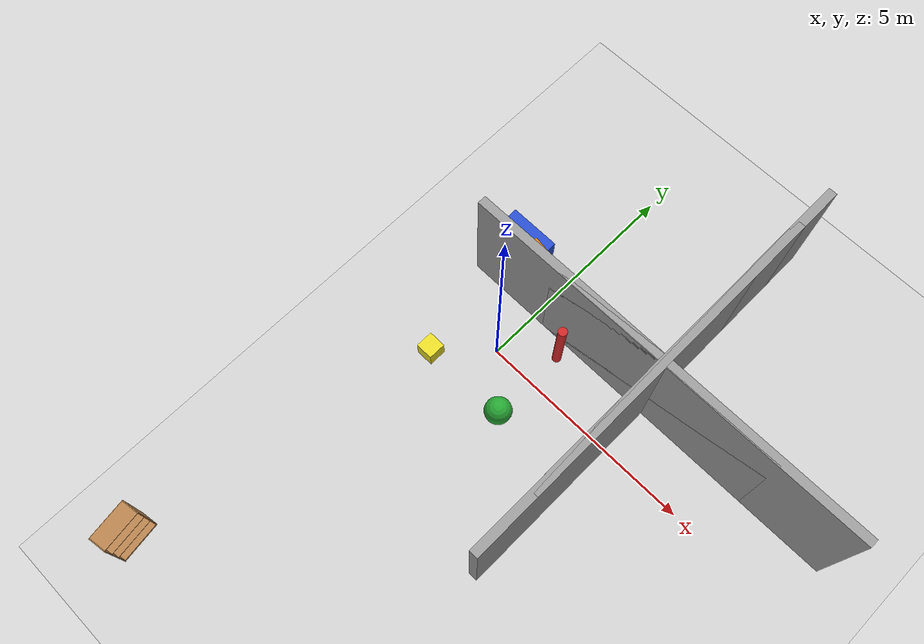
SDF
<sdf version="1.7">
 <world name="default">
  <gravity>0 0 -9.81</gravity>
  <model name="ground_plane">
   <static>1</static>
   <link name="link">
    <collision name="collision">
     <geometry><plane><normal>0 0 1</normal><size>100 100</size></plane></geometry>
     <surface><friction><ode><mu>100</mu><mu2>50</mu2></ode></friction></surface>
    </collision>
    <visual name="visual">
     <cast_shadows>0</cast_shadows>
     <geometry><plane><normal>0 0 1</normal><size>100 100</size></plane></geometry>
     <material>
      <script><uri>file://media/materials/scripts/gazebo.material</uri><name>Gazebo/Grey</name></script>
     </material>
    </visual>
   </link>
  </model>
  <spherical_coordinates>
   <surface_model>EARTH_WGS84</surface_model>
   <latitude_deg>35.6528</latitude_deg>
   <longitude_deg>139.839</longitude_deg>
   <elevation>0</elevation>
   <heading_deg>0</heading_deg>
  </spherical_coordinates>
  <light name="user_point_light_2" type="point">
   <pose>-1.4 1.4 4 0 -0 0</pose>
   <diffuse>1 1 1 1</diffuse>
   <specular>0.1 0.1 0.1 1</specular>
   <attenuation>
    <range>20</range>
    <constant>0.5</constant>
    <linear>0.01</linear>
    <quadratic>0.001</quadratic>
   </attenuation>
   <cast_shadows>0</cast_shadows>
   <direction>0 0 -1</direction>
   <spot><inner_angle>0</inner_angle><outer_angle>0</outer_angle><falloff>0</falloff></spot>
  </light>
  <light name="user_point_light_3" type="point">
   <pose>-1.4 -1.4 4 0 -0 0</pose>
   <diffuse>1 1 1 1</diffuse>
   <specular>0.1 0.1 0.1 1</specular>
   <attenuation>
    <range>20</range>
    <constant>0.5</constant>
    <linear>0.01</linear>
    <quadratic>0.001</quadratic>
   </attenuation>
   <cast_shadows>0</cast_shadows>
   <direction>0 0 -1</direction>
   <spot><inner_angle>0</inner_angle><outer_angle>0</outer_angle><falloff>0</falloff></spot>
  </light>
  <magnetic_field>6e-06 2.3e-05 -4.2e-05</magnetic_field>
  <atmosphere type="adiabatic"/>
  <physics type="ode">
   <max_step_size>0.001</max_step_size>
   <real_time_factor>1</real_time_factor>
   <real_time_update_rate>1000</real_time_update_rate>
  </physics>
  <scene><ambient>0.4 0.4 0.4 1</ambient><background>0.7 0.7 0.7 1</background><shadows>1</shadows></scene>
  <model name="bookshelf">
   <static>1</static>
   <link name="link">
    <inertial><mass>1</mass></inertial>
    <collision name="back">
     <pose>0 0.005 0.6 0 -0 0</pose>
     <geometry><box><size>0.9 0.01 1.2</size></box></geometry>
    </collision>
    <visual name="visual1">
     <pose>0 0.005 0.6 0 -0 0</pose>
     <geometry><box><size>0.9 0.01 1.2</size></box></geometry>
     <material>
      <script><uri>file://media/materials/scripts/gazebo.material</uri><name>Gazebo/Wood</name></script>
     </material>
    </visual>
    <collision name="left_side">
     <pose>0.45 -0.195 0.6 0 -0 0</pose>
     <geometry><box><size>0.02 0.4 1.2</size></box></geometry>
    </collision>
    <visual name="visual2">
     <pose>0.45 -0.195 0.6 0 -0 0</pose>
     <geometry><box><size>0.02 0.4 1.2</size></box></geometry>
     <material>
      <script><uri>file://media/materials/scripts/gazebo.material</uri><name>Gazebo/Wood</name></script>
     </material>
    </visual>
    <collision name="right_side">
     <pose>-0.45 -0.195 0.6 0 -0 0</pose>
     <geometry><box><size>0.02 0.4 1.2</size></box></geometry>
    </collision>
    <visual name="visual3">
     <pose>-0.45 -0.195 0.6 0 -0 0</pose>
     <geometry><box><size>0.02 0.4 1.2</size></box></geometry>
     <material>
      <script><uri>file://media/materials/scripts/gazebo.material</uri><name>Gazebo/Wood</name></script>
     </material>
    </visual>
    <collision name="bottom">
     <pose>0 -0.195 0.03 0 -0 0</pose>
     <geometry><box><size>0.88 0.4 0.06</size></box></geometry>
    </collision>
    <visual name="visual4">
     <pose>0 -0.195 0.03 0 -0 0</pose>
     <geometry><box><size>0.88 0.4 0.06</size></box></geometry>
     <material>
      <script><uri>file://media/materials/scripts/gazebo.material</uri><name>Gazebo/Wood</name></script>
     </material>
    </visual>
    <collision name="top">
     <pose>0 -0.195 1.19 0 -0 0</pose>
     <geometry><box><size>0.88 0.4 0.02</size></box></geometry>
    </collision>
    <visual name="visual5">
     <pose>0 -0.195 1.19 0 -0 0</pose>
     <geometry><box><size>0.88 0.4 0.02</size></box></geometry>
     <material>
      <script><uri>file://media/materials/scripts/gazebo.material</uri><name>Gazebo/Wood</name></script>
     </material>
    </visual>
    <collision name="low_shelf">
     <pose>0 -0.195 0.43 0 -0 0</pose>
     <geometry><box><size>0.88 0.4 0.02</size></box></geometry>
    </collision>
    <visual name="visual6">
     <pose>0 -0.195 0.43 0 -0 0</pose>
     <geometry><box><size>0.88 0.4 0.02</size></box></geometry>
     <material>
      <script><uri>file://media/materials/scripts/gazebo.material</uri><name>Gazebo/Wood</name></script>
     </material>
    </visual>
    <collision name="high_shelf">
     <pose>0 -0.195 0.8 0 -0 0</pose>
     <geometry><box><size>0.88 0.4 0.02</size></box></geometry>
    </collision>
    <visual name="visual7">
     <pose>0 -0.195 0.8 0 -0 0</pose>
     <geometry><box><size>0.88 0.4 0.02</size></box></geometry>
     <material>
      <script><uri>file://media/materials/scripts/gazebo.material</uri><name>Gazebo/Wood</name></script>
     </material>
    </visual>
   </link>
   <pose>-2.49525 -7.99843 0.191183 0 -0 1.71764</pose>
  </model>
  <model name="object_pillar">
   <link name="object_pillar_link">
    <inertial>
     <mass>5</mass>
     <inertia><ixx>1</ixx><ixy>0</ixy><ixz>0</ixz><iyy>1</iyy><iyz>0</iyz><izz>1</izz></inertia>
    </inertial>
    <collision name="object_pillar_link_collision">
     <geometry><cylinder><length>1.5</length><radius>0.1</radius></cylinder></geometry>
    </collision>
    <visual name="object_pillar_link_visual">
     <geometry><cylinder><length>1.5</length><radius>0.1</radius></cylinder></geometry>
     <material>
      <script><name>Gazebo/Red</name><uri>file://media/materials/scripts/gazebo.material</uri></script>
     </material>
    </visual>
   </link>
   <pose>1.00149 0.799993 0.749996 0 0 -0.004856</pose>
  </model>
  <model name="object_platform">
   <link name="object_platform_link">
    <inertial>
     <mass>10</mass>
     <inertia><ixx>1</ixx><ixy>0</ixy><ixz>0</ixz><iyy>1</iyy><iyz>0</iyz><izz>1</izz></inertia>
    </inertial>
    <collision name="object_platform_link_collision">
     <geometry><box><size>1.2 1.2 0.5</size></box></geometry>
    </collision>
    <visual name="object_platform_link_visual">
     <geometry><box><size>1.2 1.2 0.5</size></box></geometry>
     <material>
      <script><name>Gazebo/Blue</name><uri>file://media/materials/scripts/gazebo.material</uri></script>
     </material>
    </visual>
   </link>
   <pose>-1.34222 1.95009 0.25 0 -0 8e-05</pose>
  </model>
  <model name="object_sphere">
   <link name="object_sphere_link">
    <inertial>
     <mass>2</mass>
     <inertia><ixx>1</ixx><ixy>0</ixy><ixz>0</ixz><iyy>1</iyy><iyz>0</iyz><izz>1</izz></inertia>
    </inertial>
    <collision name="object_sphere_link_collision">
     <geometry><sphere><radius>0.3</radius></sphere></geometry>
    </collision>
    <visual name="object_sphere_link_visual">
     <geometry><sphere><radius>0.3</radius></sphere></geometry>
     <material>
      <script><name>Gazebo/Green</name><uri>file://media/materials/scripts/gazebo.material</uri></script>
     </material>
    </visual>
   </link>
   <pose>1 -1 0.3 0 -0 0</pose>
  </model>
  <model name="object_crate">
   <link name="object_crate_link">
    <inertial>
     <mass>3</mass>
     <inertia><ixx>1</ixx><ixy>0</ixy><ixz>0</ixz><iyy>1</iyy><iyz>0</iyz><izz>1</izz></inertia>
    </inertial>
    <collision name="object_crate_link_collision">
     <geometry><box><size>0.4 0.4 0.4</size></box></geometry>
    </collision>
    <visual name="object_crate_link_visual">
     <geometry><box><size>0.4 0.4 0.4</size></box></geometry>
     <material>
      <script><name>Gazebo/Yellow</name><uri>file://media/materials/scripts/gazebo.material</uri></script>
     </material>
    </visual>
   </link>
   <pose>-1 -1 0.2 -0 -0 -0</pose>
  </model>
  <model name="object_barrier">
   <link name="object_barrier_link">
    <inertial>
     <mass>8</mass>
     <inertia><ixx>1</ixx><ixy>0</ixy><ixz>0</ixz><iyy>1</iyy><iyz>0</iyz><izz>1</izz></inertia>
    </inertial>
    <collision name="object_barrier_link_collision">
     <geometry><box><size>2 0.05 1</size></box></geometry>
    </collision>
    <visual name="object_barrier_link_visual">
     <geometry><box><size>2 0.05 1</size></box></geometry>
     <material>
      <script><name>Gazebo/Orange</name><uri>file://media/materials/scripts/gazebo.material</uri></script>
     </material>
    </visual>
   </link>
   <pose>-0.002992 1.88088 0.785127 -0.004936 0.31475 -0.015871</pose>
  </model>
  <model name="maze_wall_1">
   <static>1</static>
   <link name="link">
    <pose>0 0 1.4 0 -0 0</pose>
    <collision name="collision"><geometry><box><size>7.5 0.2 2.8</size></box></geometry></collision>
    <visual name="visual">
     <cast_shadows>0</cast_shadows>
     <geometry><box><size>7.5 0.2 2.8</size></box></geometry>
     <material>
      <script>
       <uri>model://grey_wall/materials/scripts</uri>
       <uri>model://grey_wall/materials/textures</uri>
       <name>vrc/grey_wall</name>
      </script>
     </material>
    </visual>
   </link>
   <pose>3 0 0 0 -0 1.5707</pose>
  </model>
  <model name="maze_wall_2">
   <static>1</static>
   <link name="link">
    <pose>0 0 1.4 0 -0 0</pose>
    <collision name="collision"><geometry><box><size>7.5 0.2 2.8</size></box></geometry></collision>
    <visual name="visual">
     <cast_shadows>0</cast_shadows>
     <geometry><box><size>7.5 0.2 2.8</size></box></geometry>
     <material>
      <script>
       <uri>model://grey_wall/materials/scripts</uri>
       <uri>model://grey_wall/materials/textures</uri>
       <name>vrc/grey_wall</name>
      </script>
     </material>
    </visual>
   </link>
   <pose>3 2.5 0 0 -0 1.5707</pose>
  </model>
  <model name="maze_wall_3">
   <static>1</static>
   <link name="link">
    <pose>0 0 1.4 0 -0 0</pose>
    <collision name="collision"><geometry><box><size>7.5 0.2 2.8</size></box></geometry></collision>
    <visual name="visual">
     <cast_shadows>0</cast_shadows>
     <geometry><box><size>7.5 0.2 2.8</size></box></geometry>
     <material>
      <script>
       <uri>model://grey_wall/materials/scripts</uri>
       <uri>model://grey_wall/materials/textures</uri>
       <name>vrc/grey_wall</name>
      </script>
     </material>
    </visual>
   </link>
   <pose>2 1.25 0 0 -0 0</pose>
  </model>
  <model name="maze_wall_4">
   <static>1</static>
   <link name="link">
    <pose>0 0 1.4 0 -0 0</pose>
    <collision name="collision"><geometry><box><size>7.5 0.2 2.8</size></box></geometry></collision>
    <visual name="visual">
     <cast_shadows>0</cast_shadows>
     <geometry><box><size>7.5 0.2 2.8</size></box></geometry>
     <material>
      <script>
       <uri>model://grey_wall/materials/scripts</uri>
       <uri>model://grey_wall/materials/textures</uri>
       <name>vrc/grey_wall</name>
      </script>
     </material>
    </visual>
   </link>
   <pose>4 1.25 0 0 -0 0</pose>
  </model>
  <model name="maze_wall_5">
   <static>1</static>
   <link name="link">
    <pose>0 0 1.4 0 -0 0</pose>
    <collision name="collision"><geometry><box><size>7.5 0.2 2.8</size></box></geometry></collision>
    <visual name="visual">
     <cast_shadows>0</cast_shadows>
     <geometry><box><size>7.5 0.2 2.8</size></box></geometry>
     <material>
      <script>
       <uri>model://grey_wall/materials/scripts</uri>
       <uri>model://grey_wall/materials/textures</uri>
       <name>vrc/grey_wall</name>
      </script>
     </material>
    </visual>
   </link>
   <pose>3 1.5 0 0 -0 1.5707</pose>
  </model>
 </world>
</sdf>
